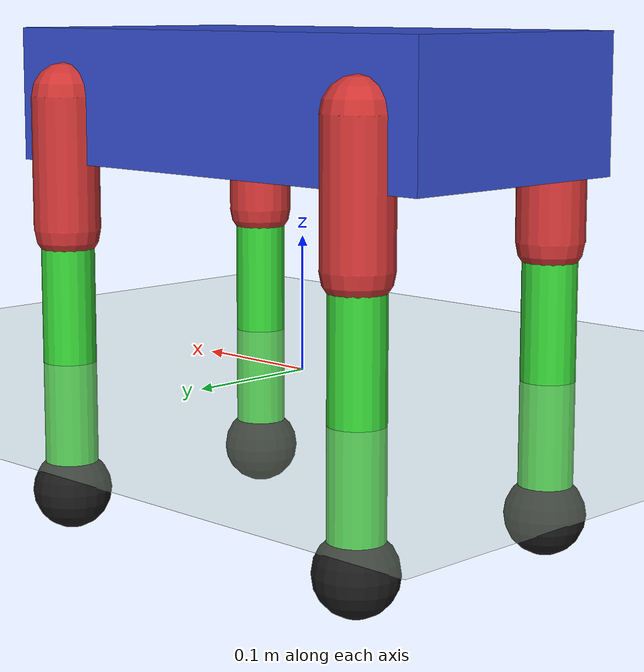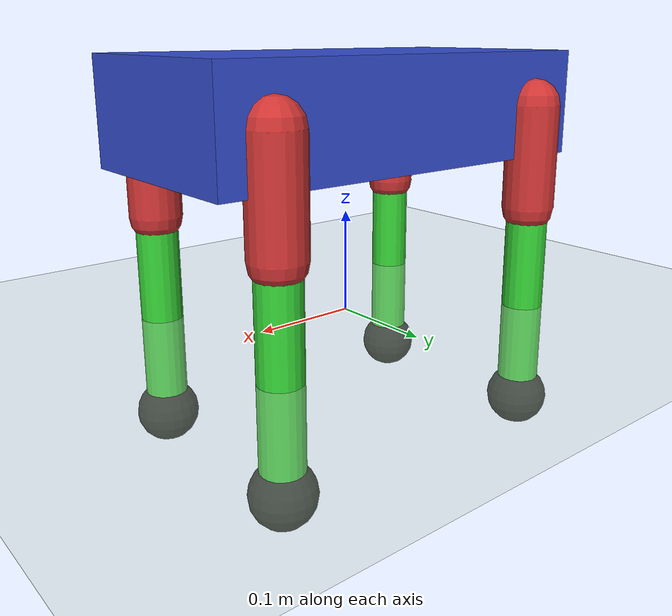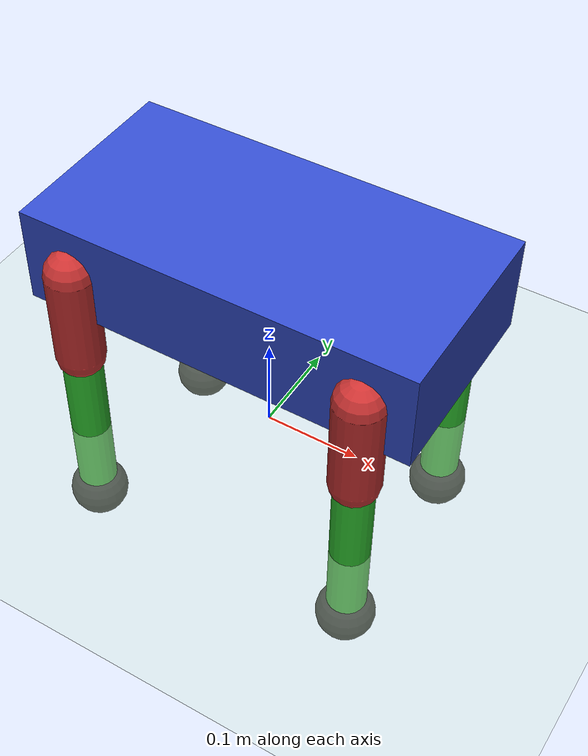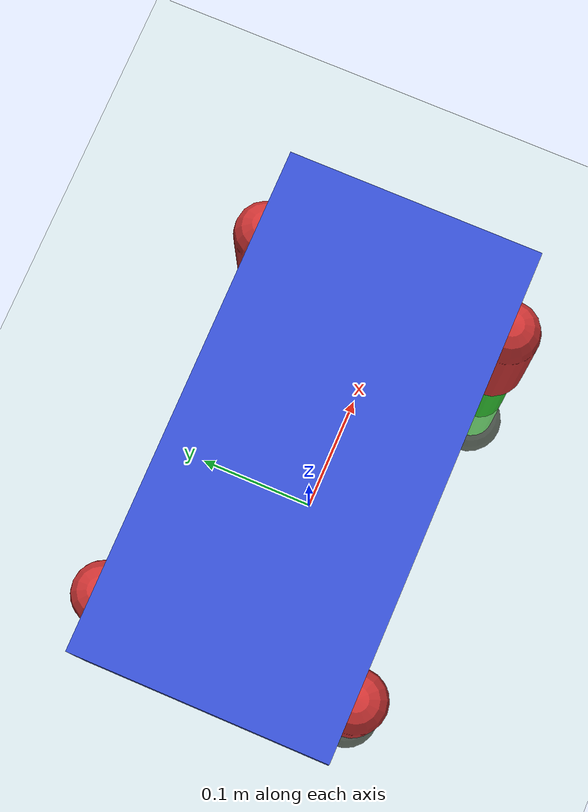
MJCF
<mujoco model="simple_quadruped">
  <compiler angle="radian" coordinate="local" meshdir=""/>

  <option timestep="0.002" iterations="50" solver="Newton"/>

  <default>
    <joint type="hinge" damping="0.5" armature="0.01" limited="true"/>
    <geom type="capsule" size="0.02" rgba="0.5 0.5 0.5 1"/>
    <motor ctrlrange="-10 10" gear="50"/>
  </default>

  <worldbody>
    <!-- 地面和灯光 -->
    <light name="light0" pos="0 0 3" dir="0 0 -1"/>
    <geom name="floor" type="plane" size="2 2 0.1" rgba="0.8 0.9 0.8 1"/>

    <!-- 躯干（身体） -->
    <body name="torso" pos="0 0 0.2">
      <inertial pos="0 0 0" mass="5" diaginertia="0.1 0.1 0.1"/>
      <geom name="torso_geom" type="box" size="0.2 0.1 0.05" rgba="0.2 0.3 0.8 1"/>

      <!-- 左前腿 (LF) -->
      <body name="lf_hip" pos="0.15 0.1 0">
        <inertial pos="0 0 -0.05" mass="0.5" diaginertia="0.01 0.01 0.001"/>
        <geom name="lf_hip_geom" fromto="0 0 0 0 0 -0.1" size="0.025" rgba="0.8 0.2 0.2 1"/>
        <joint name="lf_hip_joint" axis="1 0 0" range="-0.5 0.5"/>
        <body name="lf_knee" pos="0 0 -0.1">
          <inertial pos="0 0 -0.1" mass="0.3" diaginertia="0.005 0.005 0.001"/>
          <geom name="lf_knee_geom" fromto="0 0 0 0 0 -0.2" size="0.02" rgba="0.2 0.8 0.2 1"/>
          <joint name="lf_knee_joint" axis="1 0 0" range="-1.5 0"/>
          <!-- 足端 -->
          <geom name="lf_foot" type="sphere" size="0.03" pos="0 0 -0.2" rgba="0.1 0.1 0.1 1"/>
        </body>
      </body>

      <!-- 右前腿 (RF) -->
      <body name="rf_hip" pos="0.15 -0.1 0">
        <inertial pos="0 0 -0.05" mass="0.5" diaginertia="0.01 0.01 0.001"/>
        <geom name="rf_hip_geom" fromto="0 0 0 0 0 -0.1" size="0.025" rgba="0.8 0.2 0.2 1"/>
        <joint name="rf_hip_joint" axis="1 0 0" range="-0.5 0.5"/>
        <body name="rf_knee" pos="0 0 -0.1">
          <inertial pos="0 0 -0.1" mass="0.3" diaginertia="0.005 0.005 0.001"/>
          <geom name="rf_knee_geom" fromto="0 0 0 0 0 -0.2" size="0.02" rgba="0.2 0.8 0.2 1"/>
          <joint name="rf_knee_joint" axis="1 0 0" range="-1.5 0"/>
          <geom name="rf_foot" type="sphere" size="0.03" pos="0 0 -0.2" rgba="0.1 0.1 0.1 1"/>
        </body>
      </body>

      <!-- 左后腿 (LH) -->
      <body name="lh_hip" pos="-0.15 0.1 0">
        <inertial pos="0 0 -0.05" mass="0.5" diaginertia="0.01 0.01 0.001"/>
        <geom name="lh_hip_geom" fromto="0 0 0 0 0 -0.1" size="0.025" rgba="0.8 0.2 0.2 1"/>
        <joint name="lh_hip_joint" axis="1 0 0" range="-0.5 0.5"/>
        <body name="lh_knee" pos="0 0 -0.1">
          <inertial pos="0 0 -0.1" mass="0.3" diaginertia="0.005 0.005 0.001"/>
          <geom name="lh_knee_geom" fromto="0 0 0 0 0 -0.2" size="0.02" rgba="0.2 0.8 0.2 1"/>
          <joint name="lh_knee_joint" axis="1 0 0" range="-1.5 0"/>
          <geom name="lh_foot" type="sphere" size="0.03" pos="0 0 -0.2" rgba="0.1 0.1 0.1 1"/>
        </body>
      </body>

      <!-- 右后腿 (RH) -->
      <body name="rh_hip" pos="-0.15 -0.1 0">
        <inertial pos="0 0 -0.05" mass="0.5" diaginertia="0.01 0.01 0.001"/>
        <geom name="rh_hip_geom" fromto="0 0 0 0 0 -0.1" size="0.025" rgba="0.8 0.2 0.2 1"/>
        <joint name="rh_hip_joint" axis="1 0 0" range="-0.5 0.5"/>
        <body name="rh_knee" pos="0 0 -0.1">
          <inertial pos="0 0 -0.1" mass="0.3" diaginertia="0.005 0.005 0.001"/>
          <geom name="rh_knee_geom" fromto="0 0 0 0 0 -0.2" size="0.02" rgba="0.2 0.8 0.2 1"/>
          <joint name="rh_knee_joint" axis="1 0 0" range="-1.5 0"/>
          <geom name="rh_foot" type="sphere" size="0.03" pos="0 0 -0.2" rgba="0.1 0.1 0.1 1"/>
        </body>
      </body>
    </body>
  </worldbody>

  <actuator>
    <!-- 髋关节执行器 -->
    <motor name="lf_hip_motor" joint="lf_hip_joint"/>
    <motor name="rf_hip_motor" joint="rf_hip_joint"/>
    <motor name="lh_hip_motor" joint="lh_hip_joint"/>
    <motor name="rh_hip_motor" joint="rh_hip_joint"/>
    <!-- 膝关节执行器 -->
    <motor name="lf_knee_motor" joint="lf_knee_joint"/>
    <motor name="rf_knee_motor" joint="rf_knee_joint"/>
    <motor name="lh_knee_motor" joint="lh_knee_joint"/>
    <motor name="rh_knee_motor" joint="rh_knee_joint"/>
  </actuator>
</mujoco>
